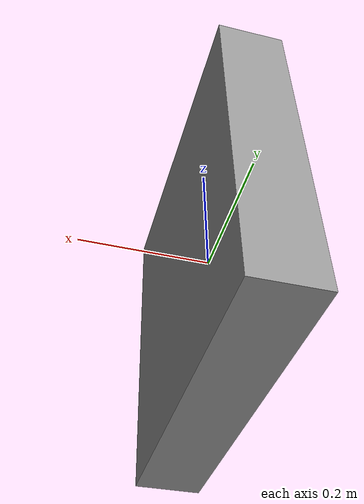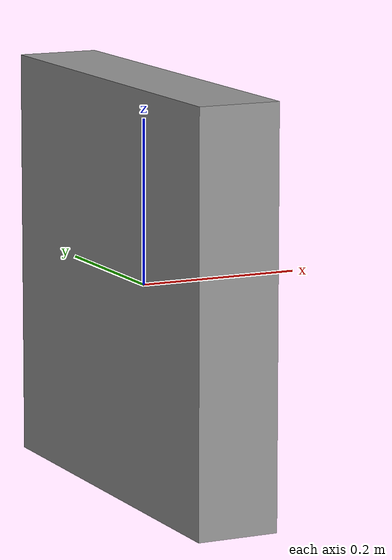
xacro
<?xml version="1.0"?>
<robot xmlns:xacro="http://www.ros.org/wiki/xacro">

    <xacro:property name="object_length" value="0.5"></xacro:property>
    <xacro:property name="object_width" value="0.1"></xacro:property>
    <xacro:property name="object_height" value="0.5"></xacro:property>
    <xacro:property name="object_density" value="5.0"></xacro:property>
    <xacro:property name="object_mass" value="${object_density * object_length * object_width * object_height}"></xacro:property>
    <xacro:property name="object_ixx" value="${object_mass * (object_width*object_width + object_height*object_height) / 12.0}"></xacro:property>
    <xacro:property name="object_iyy" value="${object_mass * (object_length*object_length + object_height*object_height) / 12.0}"></xacro:property>
    <xacro:property name="object_izz" value="${object_mass * (object_length*object_length + object_width*object_width) / 12.0}"></xacro:property>

    <link name="object">
            <inertial>
                <origin xyz="0 0 0" rpy="0 0 1.57"></origin>
                <mass value="${object_mass}"></mass>
                <inertia ixx="${object_ixx}" ixy="0.0" ixz="0.0" iyy="${object_iyy}" iyz="0.0" izz="${object_izz}"></inertia>
            </inertial>
            <visual>
                <geometry>
                    <box size="${object_length} ${object_width} ${object_height}"></box>
                </geometry>
                <origin xyz="0 0 0" rpy="0 0 1.57"></origin>
                <material name="grey"></material>
            </visual>
            <collision>
                <geometry>
                    <box size="${object_length} ${object_width} ${object_height}"></box>
                </geometry>
                <origin xyz="0 0 0" rpy="0 0 1.57"></origin>
            </collision>
        </link>

</robot>
